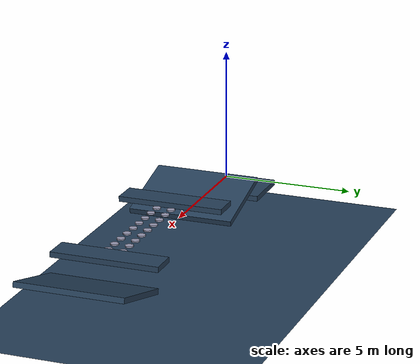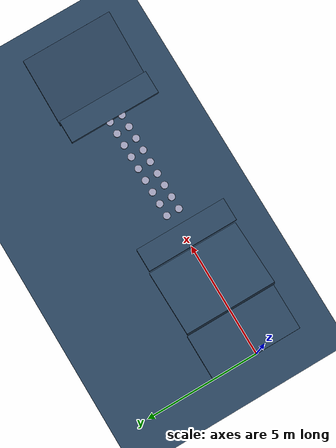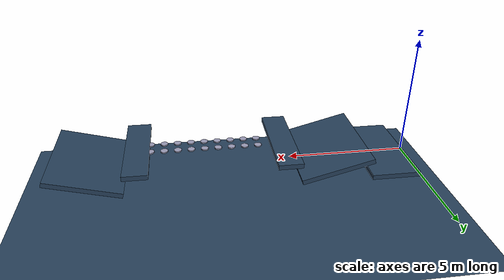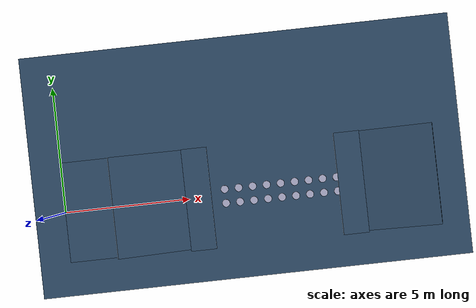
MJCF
<mujoco model="stepping_stones_terrain">
  <asset>
    <texture name="grid" type="2d" builtin="checker" width="512" height="512" rgb1=".1 .2 .3" rgb2=".2 .3 .4"/>
    <material name="grid" texture="grid" texrepeat="1 1" texuniform="true" reflectance=".2"/>
    <material name="stone" rgba=".6 .6 .7 1"/>
  </asset>

  <worldbody>
    <light pos="0 0 3" dir="0 0 -1" directional="true"/>

    <!-- Flat starting area (robot spawn point) -->
    <geom name="flat_start" type="box" pos="1.0 0 0.0" size="1.0 2.0 0.1" material="grid" friction="1.0 0.005 0.0001"/>

    <!-- Uphill slope -->
    <geom name="uphill" type="box" pos="3.4488887394336025 0 0.3882285676537811" size="1.5 2.0 0.1" euler="0 15.0 0" material="grid" friction="1.0 0.005 0.0001"/>

    <!-- First flat section -->
    <geom name="flat1" type="box" pos="5.397777478867205 0 0.8038475772933681" size="0.5 2.0 0.1" material="grid" friction="1.0 0.005 0.0001"/>

    <!-- Stepping stones section -->
    <geom name="stone_0" type="cylinder" pos="6.447777478867205 -0.275 0.8538475772933681" size="0.15 0.025" material="stone" friction="1.0 0.005 0.0001"/>
    <geom name="stone_1" type="cylinder" pos="6.447777478867205 0.275 0.8538475772933681" size="0.15 0.025" material="stone" friction="1.0 0.005 0.0001"/>
    <geom name="stone_2" type="cylinder" pos="6.997777478867205 -0.275 0.8538475772933681" size="0.15 0.025" material="stone" friction="1.0 0.005 0.0001"/>
    <geom name="stone_3" type="cylinder" pos="6.997777478867205 0.275 0.8538475772933681" size="0.15 0.025" material="stone" friction="1.0 0.005 0.0001"/>
    <geom name="stone_4" type="cylinder" pos="7.5477774788672045 -0.275 0.8538475772933681" size="0.15 0.025" material="stone" friction="1.0 0.005 0.0001"/>
    <geom name="stone_5" type="cylinder" pos="7.5477774788672045 0.275 0.8538475772933681" size="0.15 0.025" material="stone" friction="1.0 0.005 0.0001"/>
    <geom name="stone_6" type="cylinder" pos="8.097777478867204 -0.275 0.8538475772933681" size="0.15 0.025" material="stone" friction="1.0 0.005 0.0001"/>
    <geom name="stone_7" type="cylinder" pos="8.097777478867204 0.275 0.8538475772933681" size="0.15 0.025" material="stone" friction="1.0 0.005 0.0001"/>
    <geom name="stone_8" type="cylinder" pos="8.647777478867205 -0.275 0.8538475772933681" size="0.15 0.025" material="stone" friction="1.0 0.005 0.0001"/>
    <geom name="stone_9" type="cylinder" pos="8.647777478867205 0.275 0.8538475772933681" size="0.15 0.025" material="stone" friction="1.0 0.005 0.0001"/>
    <geom name="stone_10" type="cylinder" pos="9.197777478867206 -0.275 0.8538475772933681" size="0.15 0.025" material="stone" friction="1.0 0.005 0.0001"/>
    <geom name="stone_11" type="cylinder" pos="9.197777478867206 0.275 0.8538475772933681" size="0.15 0.025" material="stone" friction="1.0 0.005 0.0001"/>
    <geom name="stone_12" type="cylinder" pos="9.747777478867206 -0.275 0.8538475772933681" size="0.15 0.025" material="stone" friction="1.0 0.005 0.0001"/>
    <geom name="stone_13" type="cylinder" pos="9.747777478867206 0.275 0.8538475772933681" size="0.15 0.025" material="stone" friction="1.0 0.005 0.0001"/>
    <geom name="stone_14" type="cylinder" pos="10.297777478867207 -0.275 0.8538475772933681" size="0.15 0.025" material="stone" friction="1.0 0.005 0.0001"/>
    <geom name="stone_15" type="cylinder" pos="10.297777478867207 0.275 0.8538475772933681" size="0.15 0.025" material="stone" friction="1.0 0.005 0.0001"/>
    <geom name="stone_16" type="cylinder" pos="10.847777478867208 -0.275 0.8538475772933681" size="0.15 0.025" material="stone" friction="1.0 0.005 0.0001"/>
    <geom name="stone_17" type="cylinder" pos="10.847777478867208 0.275 0.8538475772933681" size="0.15 0.025" material="stone" friction="1.0 0.005 0.0001"/>

    <!-- Second flat section -->
    <geom name="flat2" type="box" pos="11.397777478867205 0 0.8038475772933681" size="0.5 2.0 0.1" material="grid" friction="1.0 0.005 0.0001"/>

    <!-- Downhill slope -->
    <geom name="downhill" type="box" pos="13.346666218300808 0 0.415619009639587" size="1.5 2.0 0.1" euler="0 -15.0 0" material="grid" friction="1.0 0.005 0.0001"/>

    <!-- Safety ground plane -->
    <geom name="ground" type="plane" pos="0 0 -1.0" size="50 50 0.1" material="grid" friction="1.0 0.005 0.0001"/>

  </worldbody>
</mujoco>
